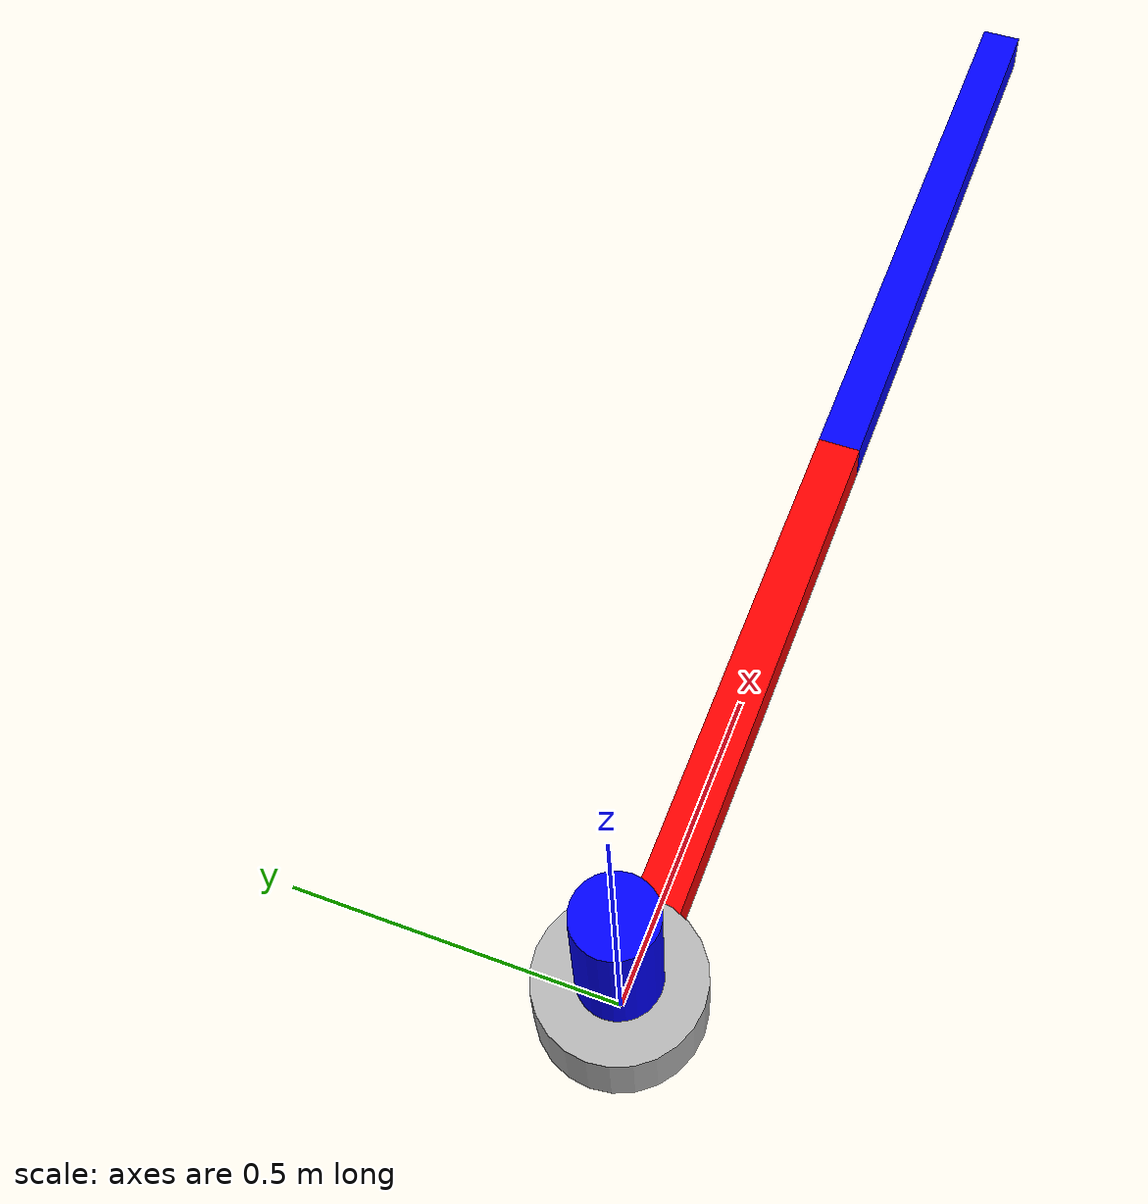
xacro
<?xml version="1.0"?>
<robot xmlns:xacro="http://www.ros.org/wiki/xacro" name="rtr_manipulator">
  <!-- RTR: Revolute (base yaw) – Prismatic (vertical) – Revolute (elbow). -->
  <xacro:property name="l2" value="1.0"/>
  <xacro:property name="l3" value="1.1"/>
  <xacro:property name="width" value="0.07"/>

  <material name="blue"><color rgba="0 0 1 1"/></material>
  <material name="red"><color rgba="1 0 0 1"/></material>
  <material name="green"><color rgba="0 1 0 1"/></material>
  <material name="grey"><color rgba="0.7 0.7 0.7 1"/></material>

  <link name="world"/>
  <!-- Origins chosen so joint variables match the paper FK (no extra vertical offset in theta_2). -->
  <link name="base_link">
    <visual>
      <origin xyz="0 0 0.05" rpy="0 0 0"/>
      <geometry><cylinder radius="0.12" length="0.1"/></geometry>
      <material name="grey"/>
    </visual>
    <collision>
      <origin xyz="0 0 0.05" rpy="0 0 0"/>
      <geometry><cylinder radius="0.12" length="0.1"/></geometry>
    </collision>
  </link>
  <joint name="world_to_base" type="fixed">
    <parent link="world"/>
    <child link="base_link"/>
    <origin xyz="0 0 0" rpy="0 0 0"/>
  </joint>

  <link name="link_yaw">
    <inertial>
      <origin xyz="0 0 0" rpy="0 0 0"/>
      <mass value="1"/>
      <inertia ixx="0.01" ixy="0" ixz="0" iyy="0.01" iyz="0" izz="0.01"/>
    </inertial>
    <visual>
      <origin xyz="0 0 0.15" rpy="0 0 0"/>
      <geometry><cylinder radius="0.06" length="0.3"/></geometry>
      <material name="blue"/>
    </visual>
    <collision>
      <origin xyz="0 0 0.15" rpy="0 0 0"/>
      <geometry><cylinder radius="0.06" length="0.3"/></geometry>
    </collision>
  </link>
  <joint name="joint_theta1" type="revolute">
    <parent link="base_link"/>
    <child link="link_yaw"/>
    <origin xyz="0 0 0" rpy="0 0 0"/>
    <axis xyz="0 0 1"/>
    <limit lower="-3.14159" upper="3.14159" effort="100" velocity="1.0"/>
  </joint>

  <link name="link_carriage">
    <inertial>
      <origin xyz="0 0 0" rpy="0 0 0"/>
      <mass value="1"/>
      <inertia ixx="0.01" ixy="0" ixz="0" iyy="0.01" iyz="0" izz="0.01"/>
    </inertial>
    <visual>
      <origin xyz="0 0 0" rpy="0 0 0"/>
      <geometry><box size="${width} ${width} ${width}"/></geometry>
      <material name="green"/>
    </visual>
    <collision>
      <origin xyz="0 0 0" rpy="0 0 0"/>
      <geometry><box size="${width} ${width} ${width}"/></geometry>
    </collision>
  </link>
  <joint name="joint_theta2" type="prismatic">
    <parent link="link_yaw"/>
    <child link="link_carriage"/>
    <origin xyz="0 0 0" rpy="0 0 0"/>
    <axis xyz="0 0 1"/>
    <limit lower="0.0" upper="2.0" effort="200" velocity="0.25"/>
  </joint>

  <link name="link_upper">
    <inertial>
      <origin xyz="${l2/2} 0 0" rpy="0 0 0"/>
      <mass value="20"/>
      <inertia ixx="0.1" ixy="0" ixz="0" iyy="1" iyz="0" izz="1"/>
    </inertial>
    <visual>
      <origin xyz="${l2/2} 0 0" rpy="0 0 0"/>
      <geometry><box size="${l2} ${width} ${width}"/></geometry>
      <material name="red"/>
    </visual>
    <collision>
      <origin xyz="${l2/2} 0 0" rpy="0 0 0"/>
      <geometry><box size="${l2} ${width} ${width}"/></geometry>
    </collision>
  </link>
  <joint name="fixed_carriage_upper" type="fixed">
    <parent link="link_carriage"/>
    <child link="link_upper"/>
    <origin xyz="0 0 0" rpy="0 0 0"/>
  </joint>

  <link name="link_forearm">
    <inertial>
      <origin xyz="${l3/2} 0 0" rpy="0 0 0"/>
      <mass value="20"/>
      <inertia ixx="0.1" ixy="0" ixz="0" iyy="1" iyz="0" izz="1"/>
    </inertial>
    <visual>
      <origin xyz="${l3/2} 0 0" rpy="0 0 0"/>
      <geometry><box size="${l3} ${width} ${width}"/></geometry>
      <material name="blue"/>
    </visual>
    <collision>
      <origin xyz="${l3/2} 0 0" rpy="0 0 0"/>
      <geometry><box size="${l3} ${width} ${width}"/></geometry>
    </collision>
  </link>
  <joint name="joint_theta3" type="revolute">
    <parent link="link_upper"/>
    <child link="link_forearm"/>
    <origin xyz="${l2} 0 0" rpy="0 0 0"/>
    <axis xyz="0 1 0"/>
    <limit lower="-3.14159" upper="3.14159" effort="100" velocity="1.0"/>
  </joint>

  <link name="tool0"/>
  <joint name="wrist_to_tool0" type="fixed">
    <parent link="link_forearm"/>
    <child link="tool0"/>
    <origin xyz="${l3} 0 0" rpy="0 0 0"/>
  </joint>

  <!-- Ignored by joint_state_publisher_gui / classic chain; required for ros2_control bringup. -->
  <ros2_control name="RTRMock" type="system">
    <hardware>
      <plugin>mock_components/GenericSystem</plugin>
      <param name="fake_sensor_commands">false</param>
    </hardware>
    <joint name="joint_theta1">
      <command_interface name="position"/>
      <state_interface name="position">
        <param name="initial_value">0.0</param>
      </state_interface>
    </joint>
    <joint name="joint_theta2">
      <command_interface name="position"/>
      <state_interface name="position">
        <param name="initial_value">0.5</param>
      </state_interface>
    </joint>
    <joint name="joint_theta3">
      <command_interface name="position"/>
      <state_interface name="position">
        <param name="initial_value">0.2</param>
      </state_interface>
    </joint>
  </ros2_control>
</robot>
